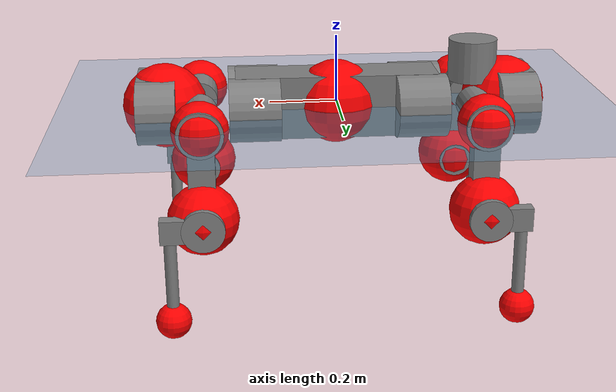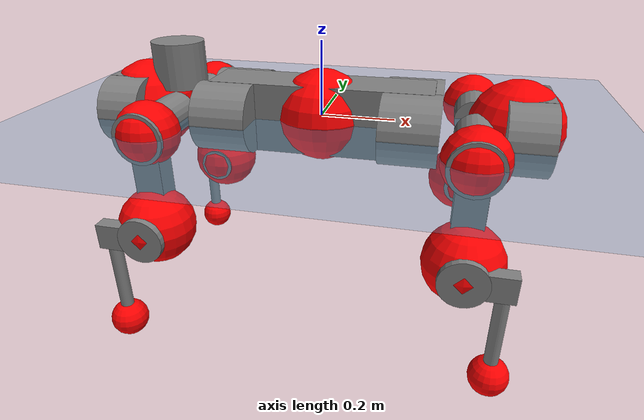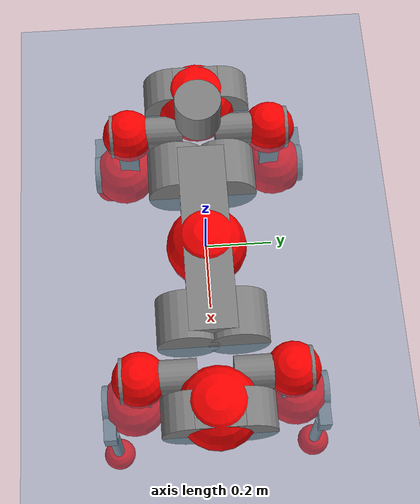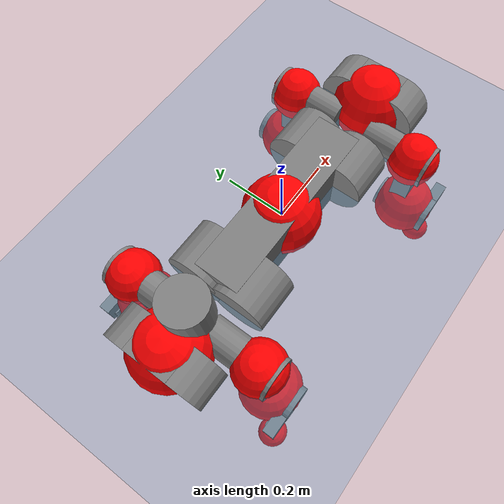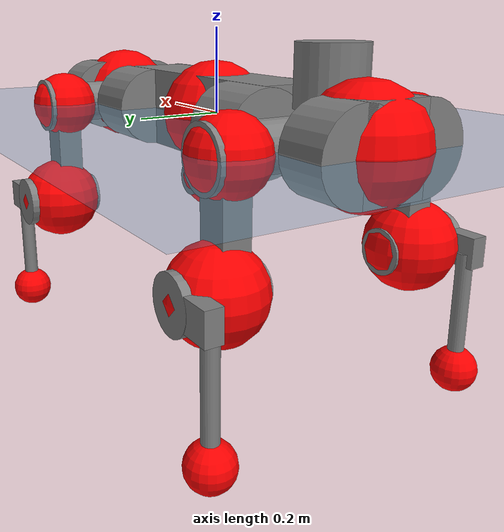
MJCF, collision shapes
<mujoco model="anymal_c">
  <compiler angle="radian" assetdir="assets" balanceinertia="true" inertiafromgeom="false"/>

  <option timestep="0.005" density="1.2" viscosity="2e-05"/>

  <size nkey="1"/>

  <visual>
    <quality shadowsize="8192"/>
    <map shadowclip="0.5"/>
  </visual>

  <default>
    <default class="/">
      <material specular="0" shininess="0.25"/>
      <geom contype="0" conaffinity="0" group="1" solref="-1000 -80"/>
      <site size="0.01 0.005 0.005" group="5"/>
      <general forcelimited="true" forcerange="-80 80" biastype="affine" gainprm="80" biasprm="0 -80 -2"/>
      <default class="anymal_c">
        <joint armature="0.01" damping="0.01" frictionloss="0.1"/>
        <default class="visual">
          <geom type="mesh" group="2"/>
          <default class="visual_zflip"/>
        </default>
        <default class="collision">
          <geom type="cylinder" group="3"/>
          <default class="foot">
            <geom size="0.03 0 0" type="sphere" condim="6" priority="1" friction="0.8 0.02 0.01" solimp="0.015 1 0.03"/>
          </default>
        </default>
      </default>
      <default class="reward_collision_sphere">
        <geom group="5" rgba="1 0 0 1"/>
      </default>
    </default>
  </default>

  <asset>
    <texture type="skybox" colorspace="auto" name="//unnamed_texture_0" builtin="gradient" rgb1="0.95 0.95 0.95" rgb2="0.95 0.95 0.95" width="100" height="600"/>
    <texture type="2d" colorspace="auto" name="texplane" builtin="checker" rgb1="0.345 0.575 0.748" rgb2="0.345 0.575 0.748" markrgb="1 1 1" width="512" height="512"/>
    <texture type="2d" colorspace="linear" name="base" file="base.png"/>
    <texture type="2d" colorspace="linear" name="top_shell" file="top_shell.png"/>
    <texture type="2d" colorspace="linear" name="bottom_shell" file="bottom_shell.png"/>
    <texture type="2d" colorspace="linear" name="remote" file="remote.png"/>
    <texture type="2d" colorspace="linear" name="hatch" file="hatch.png"/>
    <texture type="2d" colorspace="linear" name="handle" file="handle.png"/>
    <texture type="2d" colorspace="linear" name="face" file="face.png"/>
    <texture type="2d" colorspace="linear" name="battery" file="battery.png"/>
    <texture type="2d" colorspace="linear" name="lidar_cage" file="lidar_cage.png"/>
    <texture type="2d" colorspace="linear" name="depth_camera" file="depth_camera.png"/>
    <texture type="2d" colorspace="linear" name="wide_angle_camera" file="wide_angle_camera.png"/>
    <texture type="2d" colorspace="linear" name="lidar" file="lidar.png"/>
    <texture type="2d" colorspace="linear" name="drive" file="drive.png"/>
    <texture type="2d" colorspace="linear" name="hip_l" file="hip_l.png"/>
    <texture type="2d" colorspace="linear" name="shank_l" file="shank_l.png"/>
    <texture type="2d" colorspace="linear" name="foot" file="foot.png"/>
    <texture type="2d" colorspace="linear" name="thigh" file="thigh.png"/>
    <texture type="2d" colorspace="linear" name="shank_r" file="shank_r.png"/>
    <texture type="2d" colorspace="linear" name="hip_r" file="hip_r.png"/>
    <material name="MatPlane" class="/" texture="texplane" texuniform="true" texrepeat="2 2" specular="0.9" shininess="0.5"/>
    <material name="black_plastic" class="/" rgba="0.007 0.007 0.007 1"/>
    <material name="green" class="/" rgba="0.052 0.178 0.033 1"/>
    <material name="red" class="/" rgba="0.178 0.006 0.005 1"/>
    <material name="yellow" class="/" rgba="0.178 0.119 0.006 1"/>
    <material name="lwl" class="/" rgba="0.8 0.8 0.8 1"/>
    <material name="base" class="/" texture="base"/>
    <material name="top_shell" class="/" texture="top_shell"/>
    <material name="bottom_shell" class="/" texture="bottom_shell"/>
    <material name="hip_l" class="/" texture="hip_l"/>
    <material name="thigh" class="/" texture="thigh"/>
    <material name="shank_l" class="/" texture="shank_l"/>
    <material name="foot" class="/" texture="foot"/>
    <material name="hip_r" class="/" texture="hip_r"/>
    <material name="shank" class="/" texture="shank_r"/>
    <material name="hatch" class="/" texture="hatch"/>
    <material name="remote" class="/" texture="remote"/>
    <material name="handle" class="/" texture="handle"/>
    <material name="face" class="/" texture="face"/>
    <material name="depth_camera" class="/" texture="depth_camera"/>
    <material name="wide_angle_camera" class="/" texture="wide_angle_camera"/>
    <material name="battery" class="/" texture="battery"/>
    <material name="lidar_cage" class="/" texture="lidar_cage"/>
    <material name="lidar" class="/" texture="lidar"/>
    <material name="drive" class="/" texture="drive"/>
    <mesh name="base_0" class="/" file="base_0.obj"/>
    <mesh name="base_1" class="/" file="base_1.obj"/>
    <mesh name="base_2" class="/" file="base_2.obj"/>
    <mesh name="base_3" class="/" file="base_3.obj"/>
    <mesh name="base_4" class="/" file="base_4.obj"/>
    <mesh name="base_5" class="/" file="base_5.obj"/>
    <mesh name="top_shell" class="/" file="top_shell.obj"/>
    <mesh name="bottom_shell" class="/" file="bottom_shell.obj"/>
    <mesh name="remote" class="/" file="remote.obj"/>
    <mesh name="handle" class="/" file="handle.obj"/>
    <mesh name="face" class="/" file="face.obj"/>
    <mesh name="wide_angle_camera" class="/" file="wide_angle_camera.obj"/>
    <mesh name="depth_camera" class="/" file="depth_camera.obj"/>
    <mesh name="battery" class="/" file="battery.obj"/>
    <mesh name="lidar_cage" class="/" file="lidar_cage.obj"/>
    <mesh name="lidar" class="/" file="lidar.obj"/>
    <mesh name="drive" class="/" file="drive.obj"/>
    <mesh name="hip_l" class="/" file="hip_l.obj"/>
    <mesh name="thigh" class="/" file="thigh.obj"/>
    <mesh name="shank_l" class="/" file="shank_l.obj"/>
    <mesh name="foot" class="/" file="foot.obj"/>
    <mesh name="hip_r" class="/" file="hip_r.obj"/>
    <mesh name="hatch" class="/" file="hatch.obj"/>
    <mesh name="shank_r" class="/" file="shank_r.obj"/>
  </asset>

  <worldbody>
    <geom name="floor" class="/" size="100 100 0.125" type="plane" group="0" material="MatPlane"/>
    <light name="toplight_shadow" class="/" pos="0 0 5" dir="0.0990148 0.0990148 -0.990148" type="directional" ambient="0.04 0.04 0.04" diffuse="0.55 0.55 0.55" specular="0.12 0.12 0.12"/>
    <light name="toplight_fill" class="/" pos="0 0 5" dir="0.0990148 0.0990148 -0.990148" type="directional" castshadow="false" ambient="0.04 0.04 0.04" diffuse="0.3 0.3 0.3" specular="0.08 0.08 0.08"/>
    <body name="trunk" childclass="anymal_c" pos="0.00128656 0.00240956 0.000969952" quat="1 7.56938e-05 6.06459e-05 0.000555356">
      <inertial pos="0.00286916 0.000303087 0.0436353" quat="0.489613 0.498233 0.508591 0.503366" mass="21.7158" diaginertia="1.23679 0.964772 0.124061"/>
      <joint name="//unnamed_joint_0" type="free" armature="0" damping="0" frictionloss="0"/>
      <geom name="//unnamed_geom_1" class="visual" material="green" mesh="base_0"/>
      <geom name="//unnamed_geom_2" class="visual" material="yellow" mesh="base_1"/>
      <geom name="//unnamed_geom_3" class="visual" material="red" mesh="base_2"/>
      <geom name="//unnamed_geom_4" class="visual" material="black_plastic" mesh="base_3"/>
      <geom name="//unnamed_geom_5" class="visual" material="lwl" mesh="base_4"/>
      <geom name="//unnamed_geom_6" class="visual" material="base" mesh="base_5"/>
      <geom name="trunk_1" class="collision" size="0.300354 0.0724993 0.0932134" type="box"/>
      <geom name="trunk_2" class="collision" size="0.0932134 0.0750886" pos="0.246258 0.0755915 0" quat="0.707107 0 0.707107 0"/>
      <geom name="trunk_3" class="collision" size="0.0932134 0.0750886" pos="-0.246258 0.0755915 0" quat="0.707107 0 0.707107 0"/>
      <geom name="trunk_4" class="collision" size="0.0932134 0.0750886" pos="0.246258 -0.0755915 0" quat="0.707107 0 0.707107 0"/>
      <geom name="trunk_5" class="collision" size="0.0932134 0.0750886" pos="-0.246258 -0.0755915 0" quat="0.707107 0 0.707107 0"/>
      <geom name="//unnamed_geom_12" class="visual" material="top_shell" mesh="top_shell"/>
      <geom name="//unnamed_geom_13" class="visual" material="bottom_shell" mesh="bottom_shell"/>
      <geom name="//unnamed_geom_14" class="visual" material="remote" mesh="remote"/>
      <geom name="//unnamed_geom_15" class="visual" material="handle" mesh="handle"/>
      <geom name="//unnamed_geom_16" class="visual" pos="0.469306 0 0" quat="1 0 0 0" material="face" mesh="face"/>
      <geom name="trunk_6" class="collision" size="0.0569638 0.0724993 0.0932134" pos="0.531578 0 0" type="box"/>
      <geom name="//unnamed_geom_18" class="collision" size="0.0932134 0.0569638" pos="0.531578 0.0755915 0" quat="0.707107 0 0.707107 0"/>
      <geom name="//unnamed_geom_19" class="collision" size="0.0932134 0.0569638" pos="0.531578 -0.0755915 0" quat="0.707107 0 0.707107 0"/>
      <geom name="//unnamed_geom_20" class="visual" pos="0.52268 0 -0.0243316" quat="0.965926 0 0.258819 0" material="depth_camera" mesh="depth_camera"/>
      <geom name="//unnamed_geom_21" class="visual" pos="0.580829 0 0.0133984" material="wide_angle_camera" mesh="wide_angle_camera"/>
      <geom name="//unnamed_geom_22" class="visual_zflip" pos="-0.469306 0 0" quat="0 0 0 1" material="face" mesh="face"/>
      <geom name="trunk_7" class="collision" size="0.0569638 0.0724993 0.0932134" pos="-0.531578 0 0" quat="0 0 0 1" type="box"/>
      <geom name="//unnamed_geom_24" class="collision" size="0.0932134 0.0569638" pos="-0.531578 -0.0755915 0" quat="0 -0.707107 0 0.707107"/>
      <geom name="//unnamed_geom_25" class="collision" size="0.0932134 0.0569638" pos="-0.531578 0.0755915 0" quat="0 -0.707107 0 0.707107"/>
      <geom name="//unnamed_geom_26" class="visual" pos="-0.52268 0 -0.0243316" quat="0 -0.258819 0 0.965926" material="depth_camera" mesh="depth_camera"/>
      <geom name="//unnamed_geom_27" class="visual_zflip" pos="-0.580829 0 0.0133984" quat="0 0 0 1" material="wide_angle_camera" mesh="wide_angle_camera"/>
      <geom name="//unnamed_geom_28" class="visual" material="battery" mesh="battery"/>
      <geom name="//unnamed_geom_29" class="visual" pos="0 0.0818708 0.0278029" quat="0.683013 -0.183013 0.183013 0.683013" material="depth_camera" mesh="depth_camera"/>
      <geom name="//unnamed_geom_30" class="visual" pos="0 -0.0818708 0.0278029" quat="0.683013 0.183013 0.183013 -0.683013" material="depth_camera" mesh="depth_camera"/>
      <geom name="//unnamed_geom_31" class="visual" pos="-0.412129 0 0.0657835" quat="1 0 0 0" material="lidar_cage" mesh="lidar_cage"/>
      <geom name="trunk_8" class="collision" size="0.0724993 0.0621423" pos="-0.412129 0 0.119484"/>
      <geom name="//unnamed_geom_33" class="visual" pos="-0.412129 -2.05639e-05 0.127271" quat="0.707107 0 0 -0.707107" material="lidar" mesh="lidar"/>
      <geom name="//unnamed_geom_34" class="visual" pos="0.339553 0.112242 3.18894e-09" quat="0.258819 0.965926 0 0" material="drive" mesh="drive"/>
      <geom name="//unnamed_geom_35" class="visual" pos="0.339553 -0.112242 -3.18894e-09" quat="0.258819 -0.965926 0 0" material="drive" mesh="drive"/>
      <geom name="//unnamed_geom_36" class="visual" pos="-0.339553 0.112242 -3.18894e-09" quat="0 0 0.965926 -0.258819" material="drive" mesh="drive"/>
      <geom name="//unnamed_geom_37" class="visual" pos="-0.339553 -0.112242 3.18894e-09" quat="0 0 -0.965926 -0.258819" material="drive" mesh="drive"/>
      <geom name="//unnamed_geom_38" class="visual" pos="0.131338 0 0.065336" quat="1 0 0 0" material="hatch" mesh="hatch"/>
      <geom name="//unnamed_geom_39" class="reward_collision_sphere" size="0.124285"/>
      <geom name="//unnamed_geom_40" class="reward_collision_sphere" size="0.124285" pos="0.5095 0 0"/>
      <geom name="//unnamed_geom_41" class="reward_collision_sphere" size="0.124285" pos="-0.5095 0 0"/>
      <site name="imu" pos="0.289127 0.0103758 0.0396688" size="0.010357"/>
      <camera name="track" pos="0 -2.15976 0" quat="0.707107 0.707107 0 0" mode="trackcom"/>
      <camera name="ego_camera" pos="0.5095 0 -0.0358006" quat="-0.5 -0.5 0.5 0.5"/>
      <body name="LF_HIP" pos="0.339561 0.111404 -0.00345382" quat="0.259096 0.965851 -0.000173734 -0.000722462">
        <inertial pos="0.0634447 -0.0186534 -0.00742764" quat="-0.126763 0.710236 -0.13367 0.679432" mass="3.09208" diaginertia="0.0109251 0.00708012 0.00192271"/>
        <joint name="LF_HAA" pos="0 0 0" axis="0.999996 -0.00219604 0.00157171" range="-0.700961 0.487609" armature="0.010222" damping="0.0136591" frictionloss="0.11782"/>
        <geom name="//unnamed_geom_42" class="visual" pos="0 0.000187591 -3.08116e-05" quat="0.258819 -0.965926 0 0" material="hip_l" mesh="hip_l"/>
        <geom name="//unnamed_geom_43" class="visual" pos="0.0678201 -0.0814236 -0.0456426" quat="0.183013 -0.683013 0.683013 0.183013" material="drive" mesh="drive"/>
        <geom name="//unnamed_geom_44" class="collision" size="0.0517852 0.0724993" pos="0.06782 -0.0129151 -0.00618007" quat="-0.353553 -0.612372 0.612372 -0.353553"/>
        <body name="LF_THIGH" pos="0.0652834 -0.0787831 -0.0396188" quat="0.18317 -0.682213 0.683573 0.183744">
          <inertial pos="0.0359157 0.000205232 -0.219837" quat="0.994057 0.00303972 -0.0699026 0.0833931" mass="3.27988" diaginertia="0.0542841 0.0426724 0.00236088"/>
          <joint name="LF_HFE" pos="0 0 0" axis="0.999869 0.00943148 -0.0131538" range="-3.09618 3.13435" armature="0.0114083" damping="0" frictionloss="0.0890804"/>
          <geom name="//unnamed_geom_45" class="visual" pos="0.00104141 1.64102e-06 0" quat="0.707107 0 0 -0.707107" material="thigh" mesh="thigh"/>
          <geom name="//unnamed_geom_46" class="collision" size="0.0673208 0.0414282" pos="0.0452888 0 0" quat="0.5 0.5 -0.5 -0.5"/>
          <geom name="//unnamed_geom_47" class="collision" size="0.0388389 0.0310711 0.14636" pos="0.0339666 0 -0.126478" quat="0.707107 0 0 -0.707107" type="box"/>
          <geom name="//unnamed_geom_48" class="visual" pos="0.113562 0 -0.255079" quat="1 0 0 0" material="drive" mesh="drive"/>
          <geom name="//unnamed_geom_49" class="collision" size="0.0517852 0.0724993" pos="0.0343063 0 -0.255079" quat="0.707107 0 0.707107 0"/>
          <geom name="//unnamed_geom_50" class="reward_collision_sphere" size="0.0828564" pos="0.0283055 0 0"/>
          <body name="LF_SHANK" pos="0.112671 3.15084e-05 -0.256512" quat="0.999999 0.000285965 0.00109826 -0.000313948">
            <inertial pos="0.00894683 -0.0670401 -0.072614" quat="0.992868 -0.115678 -0.00300663 -0.0286784" mass="0.699917" diaginertia="0.0190097 0.0141153 0.000650598"/>
            <joint name="LF_KFE" pos="0 0 0" axis="0.99994 0.00264656 0.0106248" range="-3.13781 3.13768" armature="0.0105545" damping="0" frictionloss="0.0994875"/>
            <geom name="//unnamed_geom_51" class="visual" pos="0.000339581 0.00181066 0" quat="0.707107 0 0 -0.707107" material="shank_l" mesh="shank_l"/>
            <geom name="LF_kfe_act" class="collision" size="0.0621423 0.0207141" pos="0.0226444 0 0" quat="0.5 0.5 -0.5 -0.5"/>
            <geom name="//unnamed_geom_53" class="collision" size="0.059552 0.034955 0.0196784" pos="0.0226444 -0.0620919 0" quat="0.5 0.5 -0.5 -0.5" type="box"/>
            <geom name="//unnamed_geom_54" class="visual" pos="0.0147754 -0.0943918 -0.302488" quat="0.382683 0 0 -0.92388" material="foot" mesh="foot"/>
            <geom name="LF_calf" class="collision" size="0.0181248 0.146295" pos="0.0147755 -0.0949753 -0.151244" quat="0.707107 0 0 -0.707107"/>
            <geom name="LF_foot" class="foot" size="0.0341336" pos="0.0147755 -0.0949753 -0.28235" quat="0.707107 0 0 -0.707107"/>
            <geom name="//unnamed_geom_57" class="reward_collision_sphere" size="0.10357" pos="-0.0566111 0 0"/>
            <geom name="//unnamed_geom_58" class="reward_collision_sphere" size="0.0517852" pos="0.0147755 -0.0949753 -0.28235"/>
            <site name="LF_foot" class="foot" pos="0.0147755 -0.0949753 -0.28235" quat="0.707107 0 0 -0.707107" size="0.010357"/>
          </body>
        </body>
      </body>
      <body name="RF_HIP" pos="0.339686 -0.112781 -0.00131932" quat="0.25889 -0.965907 -5.0384e-05 -0.00016252">
        <inertial pos="0.0644332 0.0188044 -0.00838615" quat="0.135096 0.680697 0.14112 0.706036" mass="3.10235" diaginertia="0.0111121 0.00703035 0.00190631"/>
        <joint name="RF_HAA" pos="0 0 0" axis="0.999968 -0.00371113 -0.00709655" range="-0.508351 0.713988" armature="0.010489" damping="0.00683262" frictionloss="0.0942922"/>
        <geom name="//unnamed_geom_59" class="visual" pos="0 -0.000187589 -3.08116e-05" quat="0.258819 0.965926 0 0" material="hip_r" mesh="hip_r"/>
        <geom name="//unnamed_geom_60" class="visual" pos="0.06782 0.0814236 -0.0456426" quat="0.183013 0.683013 0.683013 -0.183013" material="drive" mesh="drive"/>
        <geom name="//unnamed_geom_61" class="collision" size="0.0517852 0.0724993" pos="0.06782 0.0129151 -0.00618007" quat="-0.353553 0.612372 0.612372 0.353553"/>
        <body name="RF_THIGH" pos="0.0680724 0.0763492 -0.0356007" quat="0.183009 0.682972 0.682956 -0.18338">
          <inertial pos="0.0321807 -0.000680802 -0.218218" quat="0.992729 -0.00560779 -0.0806437 0.0891863" mass="3.50298" diaginertia="0.0568889 0.0450269 0.00246116"/>
          <joint name="RF_HFE" pos="0 0 0" axis="0.999901 -0.0129032 0.00560005" stiffness="0.0148224" range="-3.13381 3.19536" armature="0.00947194" damping="0.000843288" frictionloss="0.106022"/>
          <geom name="//unnamed_geom_62" class="visual" pos="0.00104141 1.64102e-06 0" quat="0.707107 0 0 -0.707107" material="thigh" mesh="thigh"/>
          <geom name="//unnamed_geom_63" class="collision" size="0.0673208 0.0414282" pos="0.0452888 0 0" quat="0.5 0.5 0.5 0.5"/>
          <geom name="//unnamed_geom_64" class="collision" size="0.0388389 0.0310711 0.14636" pos="0.0339666 0 -0.126478" quat="0.707107 0 0 0.707107" type="box"/>
          <geom name="//unnamed_geom_65" class="visual" pos="0.113562 0 -0.255079" quat="1 0 0 0" material="drive" mesh="drive"/>
          <geom name="//unnamed_geom_66" class="collision" size="0.0517852 0.0724993" pos="0.0343063 0 -0.255079" quat="0.707107 0 0.707107 0"/>
          <geom name="//unnamed_geom_67" class="reward_collision_sphere" size="0.0828564" pos="0.0283055 0 0"/>
          <body name="RF_SHANK" pos="0.114707 0.00193208 -0.252881" quat="1 -2.89826e-05 -9.51199e-06 1.6615e-05">
            <inertial pos="0.00546709 0.0634746 -0.0703021" quat="0.992922 0.115651 -0.00133187 0.0269887" mass="0.63978" diaginertia="0.0195866 0.0138501 0.000644053"/>
            <joint name="RF_KFE" pos="0 0 0" axis="0.999904 -0.0123602 -0.00630043" stiffness="0.00252922" range="-3.1532 3.15634" armature="0.0102566" damping="0.0129979" frictionloss="0.110906"/>
            <geom name="//unnamed_geom_68" class="visual" pos="0.000339579 -0.00181066 0" quat="0.707107 0 0 0.707107" material="shank" mesh="shank_r"/>
            <geom name="RF_kfe_act" class="collision" size="0.0621423 0.0207141" pos="0.0226444 0 0" quat="0.5 0.5 0.5 0.5"/>
            <geom name="//unnamed_geom_70" class="collision" size="0.059552 0.034955 0.0196784" pos="0.0226444 0.0620919 0" quat="0.5 0.5 0.5 0.5" type="box"/>
            <geom name="//unnamed_geom_71" class="visual" pos="0.0147756 0.0943918 -0.302488" quat="0.382683 0 0 0.92388" material="foot" mesh="foot"/>
            <geom name="RF_calf" class="collision" size="0.0181248 0.146295" pos="0.0147755 0.0949753 -0.151244" quat="0.707107 0 0 0.707107"/>
            <geom name="RF_foot" class="foot" size="0.0293272" pos="0.0147755 0.0949753 -0.28235" quat="0.707107 0 0 0.707107"/>
            <geom name="//unnamed_geom_74" class="reward_collision_sphere" size="0.10357" pos="-0.0566111 0 0"/>
            <geom name="//unnamed_geom_75" class="reward_collision_sphere" size="0.0517852" pos="0.0147755 0.0949753 -0.28235"/>
            <site name="RF_foot" class="foot" pos="0.0147755 0.0949753 -0.28235" quat="0.707107 0 0 0.707107" size="0.010357"/>
          </body>
        </body>
      </body>
      <body name="LH_HIP" pos="-0.340226 0.110955 -0.00149357" quat="0.000106191 0.000130972 0.96578 -0.259363">
        <inertial pos="0.0648633 0.0169684 -0.0069617" quat="0.129777 0.675952 0.12703 0.71422" mass="2.96678" diaginertia="0.010652 0.00720084 0.00184118"/>
        <joint name="LH_HAA" pos="0 0 0" axis="0.999885 0.00999278 0.0113836" range="-0.441742 0.772261" armature="0.010252" damping="0.00986573" frictionloss="0.0926556"/>
        <geom name="//unnamed_geom_76" class="visual" pos="0 -0.000187589 -3.08116e-05" quat="-0.258819 -0.965926 0 0" material="hip_r" mesh="hip_r"/>
        <geom name="//unnamed_geom_77" class="visual" pos="0.06782 0.0814236 -0.0456426" quat="0.183013 0.683013 0.683013 -0.183013" material="drive" mesh="drive"/>
        <geom name="//unnamed_geom_78" class="collision" size="0.0517852 0.0724993" pos="0.06782 0.0129151 -0.00618007" quat="-0.353553 0.612372 0.612372 0.353553"/>
        <body name="LH_THIGH" pos="0.0698372 0.0812904 -0.0364689" quat="0.183453 0.682062 0.683943 -0.182642">
          <inertial pos="0.0357096 0.000341556 -0.220782" quat="0.993626 -0.00717271 -0.0811684 0.0778951" mass="3.54796" diaginertia="0.0561006 0.0446665 0.00248422"/>
          <joint name="LH_HFE" pos="0 0 0" axis="0.99998 0.00263528 0.00573257" range="-3.09033 3.19387" armature="0.010723" damping="0.0191637" frictionloss="0.112635"/>
          <geom name="//unnamed_geom_79" class="visual" pos="0.00104141 1.64102e-06 0" quat="0.707107 0 0 -0.707107" material="thigh" mesh="thigh"/>
          <geom name="//unnamed_geom_80" class="collision" size="0.0673208 0.0414282" pos="0.0452888 0 0" quat="0.5 0.5 -0.5 -0.5"/>
          <geom name="//unnamed_geom_81" class="collision" size="0.0388389 0.0310711 0.14636" pos="0.0339666 0 -0.126478" quat="0.707107 0 0 -0.707107" type="box"/>
          <geom name="//unnamed_geom_82" class="visual" pos="0.113562 0 -0.255079" quat="1 0 0 0" material="drive" mesh="drive"/>
          <geom name="//unnamed_geom_83" class="collision" size="0.0517852 0.0724993" pos="0.0343063 0 -0.255079" quat="0.707107 0 0.707107 0"/>
          <geom name="//unnamed_geom_84" class="reward_collision_sphere" size="0.0828564" pos="0.0283055 0 0"/>
          <body name="LH_SHANK" pos="0.110963 0.0015546 -0.255193" quat="1 -4.66235e-05 6.25571e-06 3.65008e-05">
            <inertial pos="0.00547754 0.0660013 -0.0729731" quat="0.991986 0.120765 -0.00880805 0.0360886" mass="0.647424" diaginertia="0.0191416 0.0131585 0.000639263"/>
            <joint name="LH_KFE" pos="0 0 0" axis="0.999955 0.00511793 0.00803782" range="-3.12849 3.08559" armature="0.0109433" damping="0.00846982" frictionloss="0.0924372"/>
            <geom name="//unnamed_geom_85" class="visual" pos="0.000339579 -0.00181066 0" quat="-0.707107 0 0 -0.707107" material="shank" mesh="shank_r"/>
            <geom name="LH_kfe_act" class="collision" size="0.0621423 0.0207141" pos="0.0226444 0 0" quat="0.5 0.5 -0.5 -0.5"/>
            <geom name="//unnamed_geom_87" class="collision" size="0.059552 0.034955 0.0196784" pos="0.0226444 0.0620919 0" quat="0.5 0.5 -0.5 -0.5" type="box"/>
            <geom name="//unnamed_geom_88" class="visual" pos="0.0147756 0.0943918 -0.302488" quat="-0.382683 0 0 -0.92388" material="foot" mesh="foot"/>
            <geom name="LH_calf" class="collision" size="0.0181248 0.146295" pos="0.0147755 0.0949753 -0.151244" quat="0.707107 0 0 -0.707107"/>
            <geom name="LH_foot" class="foot" size="0.0291803" pos="0.0147755 0.0949753 -0.28235" quat="0.707107 0 0 -0.707107"/>
            <geom name="//unnamed_geom_91" class="reward_collision_sphere" size="0.10357" pos="-0.0566111 0 0"/>
            <geom name="//unnamed_geom_92" class="reward_collision_sphere" size="0.0517852" pos="0.0147755 0.0949753 -0.28235"/>
            <site name="LH_foot" class="foot" pos="0.0147755 0.0949753 -0.28235" quat="0.707107 0 0 -0.707107" size="0.010357"/>
          </body>
        </body>
      </body>
      <body name="RH_HIP" pos="-0.339924 -0.109822 0.000854543" quat="-0.000326992 -0.000685626 -0.966085 -0.258223">
        <inertial pos="0.0665698 -0.013811 -0.00709398" quat="-0.125949 0.710689 -0.135634 0.678721" mass="3.06589" diaginertia="0.0112305 0.00743202 0.00194619"/>
        <joint name="RH_HAA" pos="0 0 0" axis="0.999999 0.00106912 5.43173e-05" range="-0.72191 0.534989" armature="0.00923119" damping="0.0248304" frictionloss="0.100723"/>
        <geom name="//unnamed_geom_93" class="visual" pos="0 0.000187591 -3.08116e-05" quat="-0.258819 0.965926 0 0" material="hip_l" mesh="hip_l"/>
        <geom name="//unnamed_geom_94" class="visual" pos="0.0678201 -0.0814236 -0.0456426" quat="-0.183013 0.683013 -0.683013 -0.183013" material="drive" mesh="drive"/>
        <geom name="//unnamed_geom_95" class="collision" size="0.0517852 0.0724993" pos="0.06782 -0.0129151 -0.00618007" quat="0.353553 0.612372 -0.612372 0.353553"/>
        <body name="RH_THIGH" pos="0.0674751 -0.0795202 -0.0365682" quat="-0.184222 0.682845 -0.682949 -0.182662">
          <inertial pos="0.0366358 0.000986599 -0.217796" quat="0.993272 -0.0044057 -0.0809317 0.0827164" mass="3.35741" diaginertia="0.0568917 0.0448631 0.00238758"/>
          <joint name="RH_HFE" pos="0 0 0" axis="0.999993 -0.00332118 -0.00158623" range="-3.14566 3.19157" armature="0.0111818" damping="0.00397045" frictionloss="0.0892349"/>
          <geom name="//unnamed_geom_96" class="visual" pos="0.00104141 1.64102e-06 0" quat="0.707107 0 0 -0.707107" material="thigh" mesh="thigh"/>
          <geom name="//unnamed_geom_97" class="collision" size="0.0673208 0.0414282" pos="0.0452888 0 0" quat="0.5 0.5 0.5 0.5"/>
          <geom name="//unnamed_geom_98" class="collision" size="0.0388389 0.0310711 0.14636" pos="0.0339666 0 -0.126478" quat="0.707107 0 0 0.707107" type="box"/>
          <geom name="//unnamed_geom_99" class="visual" pos="0.113562 0 -0.255079" quat="1 0 0 0" material="drive" mesh="drive"/>
          <geom name="//unnamed_geom_100" class="collision" size="0.0517852 0.0724993" pos="0.0343063 0 -0.255079" quat="0.707107 0 0.707107 0"/>
          <geom name="//unnamed_geom_101" class="reward_collision_sphere" size="0.0828564" pos="0.0283055 0 0"/>
          <body name="RH_SHANK" pos="0.111671 0.00162903 -0.254074" quat="1 -8.93012e-05 -0.000186636 -0.000235163">
            <inertial pos="0.00485164 -0.0661864 -0.071569" quat="0.992438 -0.119296 -0.002644 -0.0287794" mass="0.674287" diaginertia="0.0184612 0.013966 0.000652203"/>
            <joint name="RH_KFE" pos="0 0 0" axis="1 -1.70166e-05 -0.000876774" range="-3.16087 3.15045" armature="0.0102877" damping="0.0136554" frictionloss="0.105977"/>
            <geom name="//unnamed_geom_102" class="visual" pos="0.000339581 0.00181066 0" quat="0.707107 0 0 -0.707107" material="shank_l" mesh="shank_l"/>
            <geom name="RH_kfe_act" class="collision" size="0.0621423 0.0207141" pos="0.0226444 0 0" quat="0.5 0.5 0.5 0.5"/>
            <geom name="//unnamed_geom_104" class="collision" size="0.059552 0.034955 0.0196784" pos="0.0226444 -0.0620919 0" quat="0.5 0.5 0.5 0.5" type="box"/>
            <geom name="//unnamed_geom_105" class="visual" pos="0.0147754 -0.0943918 -0.302488" quat="0.382683 0 0 -0.92388" material="foot" mesh="foot"/>
            <geom name="RH_calf" class="collision" size="0.0181248 0.146295" pos="0.0147755 -0.0949753 -0.151244" quat="0.707107 0 0 0.707107"/>
            <geom name="RH_foot" class="foot" size="0.0312153" pos="0.0147755 -0.0949753 -0.28235" quat="0.707107 0 0 0.707107"/>
            <geom name="//unnamed_geom_108" class="reward_collision_sphere" size="0.10357" pos="-0.0566111 0 0"/>
            <geom name="//unnamed_geom_109" class="reward_collision_sphere" size="0.0517852" pos="0.0147755 -0.0949753 -0.28235"/>
            <site name="RH_foot" class="foot" pos="0.0147755 -0.0949753 -0.28235" quat="0.707107 0 0 0.707107" size="0.010357"/>
          </body>
        </body>
      </body>
    </body>
  </worldbody>

  <contact>
    <pair class="/" geom1="floor" geom2="LF_foot" name="//unnamed_contact_0"/>
    <pair class="/" geom1="floor" geom2="RF_foot" name="//unnamed_contact_1"/>
    <pair class="/" geom1="floor" geom2="LH_foot" name="//unnamed_contact_2"/>
    <pair class="/" geom1="floor" geom2="RH_foot" name="//unnamed_contact_3"/>
  </contact>

  <actuator>
    <general name="LF_HAA" class="/" joint="LF_HAA" forcerange="-83.302 83.302" gainprm="83.4971" biasprm="0 -83.4971 -2.23149"/>
    <general name="LF_HFE" class="/" joint="LF_HFE" forcerange="-77.3554 77.3554" gainprm="83.4971" biasprm="0 -83.4971 -2.23149"/>
    <general name="LF_KFE" class="/" joint="LF_KFE" forcerange="-91.4938 91.4938" gainprm="83.4971" biasprm="0 -83.4971 -2.23149"/>
    <general name="RF_HAA" class="/" joint="RF_HAA" forcerange="-84.9489 84.9489" gainprm="83.4971" biasprm="0 -83.4971 -2.23149"/>
    <general name="RF_HFE" class="/" joint="RF_HFE" forcerange="-85.0804 85.0804" gainprm="83.4971" biasprm="0 -83.4971 -2.23149"/>
    <general name="RF_KFE" class="/" joint="RF_KFE" forcerange="-91.7948 91.7948" gainprm="83.4971" biasprm="0 -83.4971 -2.23149"/>
    <general name="LH_HAA" class="/" joint="LH_HAA" forcerange="-84.0247 84.0247" gainprm="83.4971" biasprm="0 -83.4971 -2.23149"/>
    <general name="LH_HFE" class="/" joint="LH_HFE" forcerange="-91.8952 91.8952" gainprm="83.4971" biasprm="0 -83.4971 -2.23149"/>
    <general name="LH_KFE" class="/" joint="LH_KFE" forcerange="-75.207 75.207" gainprm="83.4971" biasprm="0 -83.4971 -2.23149"/>
    <general name="RH_HAA" class="/" joint="RH_HAA" forcerange="-85.8188 85.8188" gainprm="83.4971" biasprm="0 -83.4971 -2.23149"/>
    <general name="RH_HFE" class="/" joint="RH_HFE" forcerange="-90.0923 90.0923" gainprm="83.4971" biasprm="0 -83.4971 -2.23149"/>
    <general name="RH_KFE" class="/" joint="RH_KFE" forcerange="-83.6298 83.6298" gainprm="83.4971" biasprm="0 -83.4971 -2.23149"/>
  </actuator>

  <sensor>
    <gyro site="imu" name="imu_angular_velocity"/>
    <velocimeter site="imu" name="imu_linear_velocity"/>
    <framelinvel objtype="site" objname="LF_foot" name="LF_foot_global_linear_velocity"/>
    <framelinvel objtype="site" objname="RF_foot" name="RF_foot_global_linear_velocity"/>
    <framelinvel objtype="site" objname="LH_foot" name="LH_foot_global_linear_velocity"/>
    <framelinvel objtype="site" objname="RH_foot" name="RH_foot_global_linear_velocity"/>
  </sensor>

  <keyframe>
    <key name="home" qpos="0 0 0.55 1 0 0 0 0 0.4 -0.8 0 -0.4 0.8 0 -0.4 0.8 0 0.4 -0.8"/>
  </keyframe>
</mujoco>
